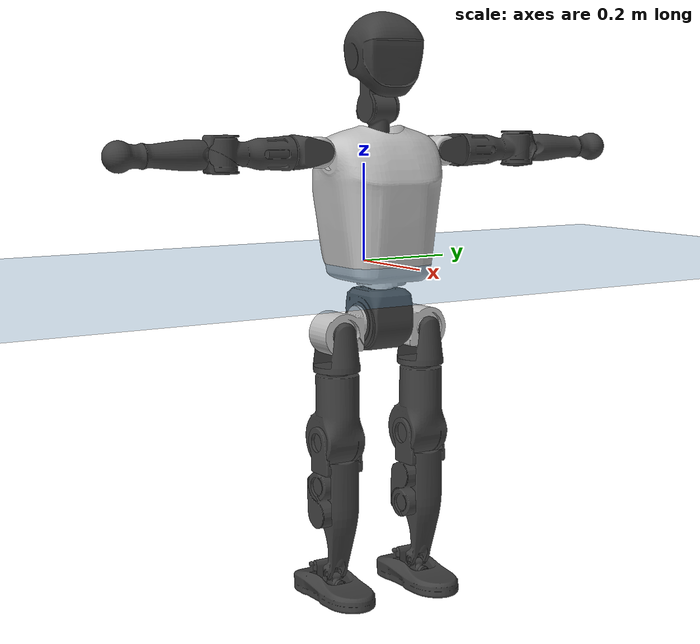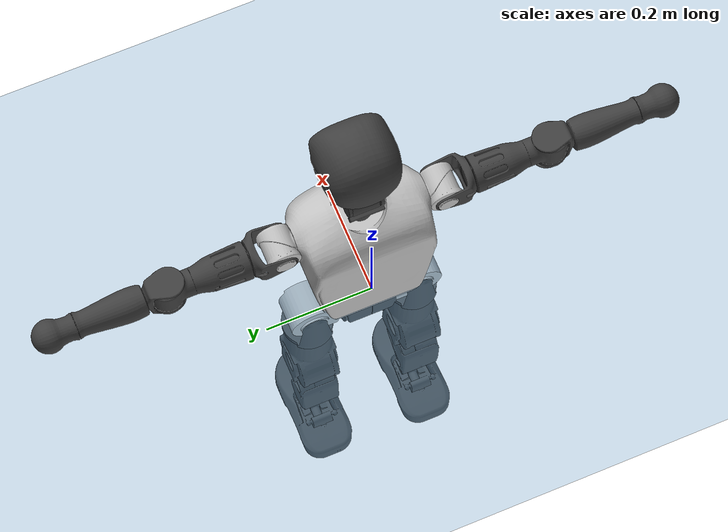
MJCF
<mujoco model="T1">
  <compiler angle="radian" assetdir="assets" balanceinertia="true" inertiafromgeom="false"/>

  <option timestep="0.005" density="1.2" viscosity="2e-05"/>

  <size nkey="1"/>

  <visual>
    <quality shadowsize="8192"/>
    <map shadowclip="0.5"/>
  </visual>

  <default>
    <default class="/">
      <joint armature="0.01" damping="0.01" frictionloss="0.1"/>
      <geom contype="0" conaffinity="0" group="1" solref="-1000 -80"/>
      <site size="0.01 0.005 0.005" group="5"/>
      <general forcelimited="true" biastype="affine" gainprm="25" biasprm="0 -25 -0.6"/>
      <default class="t1">
        <geom rgba="0.25 0.25 0.25 1"/>
        <default class="visual">
          <geom type="mesh" group="2"/>
        </default>
        <default class="collision">
          <geom group="3"/>
        </default>
        <default class="foot">
          <geom size="0.1115 0.05 0.015" type="box" condim="6" group="4" priority="1" solimp="0.015 1 0.015"/>
        </default>
        <default class="reward_collision_sphere">
          <geom group="5" rgba="1 0 0 1"/>
        </default>
      </default>
    </default>
  </default>

  <asset>
    <texture type="skybox" colorspace="auto" name="//unnamed_texture_0" builtin="gradient" rgb1="0.95 0.95 0.95" rgb2="0.95 0.95 0.95" width="100" height="600"/>
    <texture type="2d" colorspace="auto" name="texplane" builtin="checker" rgb1="0.345 0.575 0.748" rgb2="0.345 0.575 0.748" markrgb="1 1 1" width="512" height="512"/>
    <material name="MatPlane" class="/" texture="texplane" texuniform="true" texrepeat="2 2" specular="0.9"/>
    <mesh name="Trunk" class="/" file="Trunk.stl"/>
    <mesh name="H1" class="/" file="H1.stl"/>
    <mesh name="H2" class="/" file="H2.stl"/>
    <mesh name="AL1" class="/" file="AL1.stl"/>
    <mesh name="AL2" class="/" file="AL2.stl"/>
    <mesh name="AL3" class="/" file="AL3.stl"/>
    <mesh name="left_hand_link" class="/" file="left_hand_link.stl"/>
    <mesh name="AR1" class="/" file="AR1.stl"/>
    <mesh name="AR2" class="/" file="AR2.stl"/>
    <mesh name="AR3" class="/" file="AR3.stl"/>
    <mesh name="right_hand_link" class="/" file="right_hand_link.stl"/>
    <mesh name="Waist" class="/" file="Waist.stl"/>
    <mesh name="Hip_Pitch_Left" class="/" file="Hip_Pitch_Left.stl"/>
    <mesh name="Hip_Roll_Left" class="/" file="Hip_Roll_Left.stl"/>
    <mesh name="Hip_Yaw_Left" class="/" file="Hip_Yaw_Left.stl"/>
    <mesh name="Shank_Left" class="/" file="Shank_Left.stl"/>
    <mesh name="Ankle_Cross_Left" class="/" file="Ankle_Cross_Left.stl"/>
    <mesh name="left_foot_link" class="/" file="left_foot_link.stl"/>
    <mesh name="Hip_Pitch_Right" class="/" file="Hip_Pitch_Right.stl"/>
    <mesh name="Hip_Roll_Right" class="/" file="Hip_Roll_Right.stl"/>
    <mesh name="Hip_Yaw_Right" class="/" file="Hip_Yaw_Right.stl"/>
    <mesh name="Shank_Right" class="/" file="Shank_Right.stl"/>
    <mesh name="Ankle_Cross_Right" class="/" file="Ankle_Cross_Right.stl"/>
    <mesh name="right_foot_link" class="/" file="right_foot_link.stl"/>
  </asset>

  <worldbody>
    <geom name="floor" class="/" size="100 100 0.125" type="plane" group="0" material="MatPlane"/>
    <light name="toplight_shadow" class="/" pos="0 0 5" dir="0.0990148 0.0990148 -0.990148" type="directional" ambient="0.04 0.04 0.04" diffuse="0.55 0.55 0.55" specular="0.12 0.12 0.12"/>
    <light name="toplight_fill" class="/" pos="0 0 5" dir="0.0990148 0.0990148 -0.990148" type="directional" castshadow="false" ambient="0.04 0.04 0.04" diffuse="0.3 0.3 0.3" specular="0.08 0.08 0.08"/>
    <body name="trunk" childclass="t1" pos="-3.45645e-05 0.000944989 -0.000109463" quat="1 0.000194709 5.55928e-05 -9.86256e-06">
      <inertial pos="0.0484057 0.000141649 0.108806" quat="0.999958 -0.000517347 -0.00894313 0.001827" mass="10.4476" diaginertia="0.0507412 0.0639891 0.0676222"/>
      <joint name="//unnamed_joint_0" type="free" armature="0" damping="0" frictionloss="0"/>
      <geom name="//unnamed_geom_1" class="visual" rgba="0.76 0.76 0.76 1" mesh="Trunk"/>
      <geom name="//unnamed_geom_2" class="collision" size="0.072064 0.0960853 0.144128" pos="0.0530183 0 0.124395" type="box"/>
      <geom name="//unnamed_geom_3" class="reward_collision_sphere" size="0.110498" pos="0.0530183 0 0.103663"/>
      <geom name="//unnamed_geom_4" class="reward_collision_sphere" size="0.0144128" pos="0.0530183 0.0817951 0"/>
      <geom name="//unnamed_geom_5" class="reward_collision_sphere" size="0.0144128" pos="0.0530183 -0.0817951 0"/>
      <geom name="//unnamed_geom_6" class="reward_collision_sphere" size="0.0144128" pos="0.0530183 0.102966 0.186593"/>
      <geom name="//unnamed_geom_7" class="reward_collision_sphere" size="0.0144128" pos="0.0530183 -0.102966 0.186593"/>
      <site name="imu" pos="-0.00262959 -0.00019378 0.00288391" size="0.00960853"/>
      <camera name="track" pos="0 -1.92459 0" quat="0.707107 0.707107 0 0" mode="trackcom"/>
      <camera name="ego_camera" pos="0.107804 0 0.435383" quat="-0.5 -0.5 0.5 0.5"/>
      <body name="H1" pos="0.0545845 -0.000286207 0.25081" quat="1 -3.52685e-05 1.56987e-05 6.34031e-05">
        <inertial pos="-0.0012954 -0.00161039 0.0595222" quat="0.763909 -0.0132949 0.00188407 0.645184" mass="0.396899" diaginertia="0.000132087 0.000184858 0.000179747"/>
        <joint name="AAHead_yaw" pos="0 0 0" axis="-0.00226223 -0.00154693 0.999996" range="-1.58121 1.56499" armature="0.0099698" damping="0.0113138" frictionloss="0.0986069"/>
        <geom name="//unnamed_geom_8" class="visual" mesh="H1"/>
        <body name="H2" pos="0.000623277 -0.00179203 0.0640308" quat="1 0.000137057 -0.000103483 -0.000281801">
          <inertial pos="0.00602255 0.000505479 0.101006" quat="0.988477 0.106089 -0.0743363 -0.0783135" mass="0.552441" diaginertia="0.00109898 0.00155965 0.00206363"/>
          <joint name="Head_pitch" pos="0 0 0" axis="0.00159475 -0.999999 0.000253597" range="-1.21944 0.346222" armature="0.00917711" damping="0.00340568" frictionloss="0.0982269"/>
          <geom name="//unnamed_geom_9" class="visual" mesh="H2"/>
          <geom name="//unnamed_geom_10" class="collision" size="0.0768682" pos="0.00883638 0 0.114029"/>
          <geom name="//unnamed_geom_11" class="reward_collision_sphere" size="0.0864768" pos="0.0176728 0 0.103663"/>
        </body>
      </body>
      <body name="AL1" pos="0.0520858 0.102585 0.226456" quat="1 -0.00043814 0.00084571 3.69116e-05">
        <inertial pos="8.92987e-05 0.0430673 0.000151779" quat="0.504673 0.495549 -0.503952 0.49575" mass="0.475356" diaginertia="0.000745618 0.00106603 0.00035379"/>
        <joint name="Left_Shoulder_Pitch" pos="0 0 0" axis="4.30924e-05 1 0.000116824" range="-3.28986 1.24084" armature="0.00961378" damping="0.00168771" frictionloss="0.0915159"/>
        <geom name="//unnamed_geom_12" class="visual" rgba="0.76 0.76 0.76 1" mesh="AL1"/>
        <body name="AL2" pos="0.000648277 0.0451407 -0.000175141" quat="1 -9.84651e-05 -1.69399e-05 -5.02059e-05">
          <inertial pos="0.00398586 0.0370209 0.000641411" quat="0.488103 0.511171 -0.486411 0.513677" mass="0.140171" diaginertia="0.000212938 0.000283339 0.000211626"/>
          <joint name="Left_Shoulder_Roll" pos="0 0 0" axis="-0.999999 0.000193881 0.00113665" range="-1.59063 1.73402" armature="0.0100531" damping="0.00510308" frictionloss="0.0965951"/>
          <geom name="//unnamed_geom_13" class="visual" mesh="AL2"/>
          <body name="AL3" pos="0.000306607 0.0587603 -0.00025704" quat="1 1.09256e-05 -2.68998e-05 4.01455e-05">
            <inertial pos="-3.07946e-06 0.0813029 -0.000644237" quat="0.708936 0.705267 -0.00291573 0.000512838" mass="0.899981" diaginertia="0.00696198 0.0105628 0.000748814"/>
            <joint name="Left_Elbow_Pitch" pos="0 0 0" axis="-0.00447964 -0.999989 -0.0012078" stiffness="0.00349331" range="-2.29515 2.28475" armature="0.010351" damping="0.00762512" frictionloss="0.0975882"/>
            <geom name="//unnamed_geom_14" class="visual" mesh="AL3"/>
            <geom name="//unnamed_geom_15" class="collision" size="0.0288256 0.072064" pos="0 0.0481148 0" quat="0.707105 0.707108 0 0" type="cylinder"/>
            <geom name="//unnamed_geom_16" class="reward_collision_sphere" size="0.0345907"/>
            <body name="left_hand_link" pos="0.000253935 0.142464 0.00143808" quat="1 0.000222305 -0.000309602 -0.000249738">
              <inertial pos="-0.0010344 0.10468 0.000435466" quat="0.707383 0.70683 -4.62467e-05 0.000451585" mass="0.289737" diaginertia="0.00437262 0.00664364 0.000258802"/>
              <joint name="Left_Elbow_Yaw" pos="0 0 0" axis="-0.00514699 0.00191035 0.999985" range="-2.43987 -0.0217467" armature="0.00937711" damping="0.00817873" frictionloss="0.095569"/>
              <geom name="//unnamed_geom_17" class="visual" mesh="left_hand_link"/>
              <geom name="//unnamed_geom_18" class="collision" size="0.0288256 0.0840746" pos="0 0.125098 0" quat="0.707105 0.707108 0 0" type="cylinder"/>
              <geom name="//unnamed_geom_19" class="reward_collision_sphere" size="0.0480427"/>
              <geom name="//unnamed_geom_20" class="reward_collision_sphere" size="0.0336299" pos="0 0.105853 0"/>
              <geom name="//unnamed_geom_21" class="reward_collision_sphere" size="0.0336299" pos="0 0.206894 0"/>
            </body>
          </body>
        </body>
      </body>
      <body name="AR1" pos="0.0496983 -0.101695 0.227252" quat="1 -0.000154387 0.000218383 -0.000179991">
        <inertial pos="-0.000269248 -0.0450736 -0.000405209" quat="0.501997 0.4991 -0.502838 0.496036" mass="0.467642" diaginertia="0.000743504 0.00106813 0.000346473"/>
        <joint name="Right_Shoulder_Pitch" pos="0 0 0" axis="0.00120185 -0.999992 -0.00384699" range="-1.22362 3.32844" armature="0.00970841" damping="0.00958177" frictionloss="0.100458"/>
        <geom name="//unnamed_geom_22" class="visual" rgba="0.76 0.76 0.76 1" mesh="AR1"/>
        <body name="AR2" pos="0.000491567 -0.0449726 0.000855762" quat="1 6.41354e-05 0.000297065 -0.000322955">
          <inertial pos="0.00413167 -0.036667 0.000341581" quat="0.512645 0.487444 -0.508628 0.490806" mass="0.140993" diaginertia="0.000216234 0.000287354 0.000210852"/>
          <joint name="Right_Shoulder_Roll" pos="0 0 0" axis="-0.999974 -0.00261829 0.00664843" range="-1.75216 1.56051" armature="0.00973626" damping="0.00375488" frictionloss="0.103184"/>
          <geom name="//unnamed_geom_23" class="visual" mesh="AR2"/>
          <body name="AR3" pos="-0.0011615 -0.0590135 -0.0018254" quat="1 -5.97295e-05 6.48431e-05 -4.02238e-05">
            <inertial pos="-0.000553248 -0.0828002 0.000753888" quat="0.708088 0.706123 0.00135296 -5.44095e-05" mass="0.906901" diaginertia="0.00694824 0.0105502 0.000747506"/>
            <joint name="Right_Elbow_Pitch" pos="0 0 0" axis="0.00117507 0.999999 0.000111735" range="-2.27913 2.28612" armature="0.00928061" damping="0.0102579" frictionloss="0.0924404"/>
            <geom name="//unnamed_geom_24" class="visual" mesh="AR3"/>
            <geom name="//unnamed_geom_25" class="collision" size="0.0288256 0.072064" pos="0 -0.0481148 0" quat="0.707105 0.707108 0 0" type="cylinder"/>
            <geom name="//unnamed_geom_26" class="reward_collision_sphere" size="0.0345907"/>
            <body name="right_hand_link" pos="-8.85038e-05 -0.141199 0.000264611" quat="1 0.000105001 1.84137e-05 -9.3553e-05">
              <inertial pos="-0.000335619 -0.10439 0.00179843" quat="0.70619 0.708022 0.000160532 0.000312191" mass="0.291768" diaginertia="0.0044362 0.00677945 0.000260421"/>
              <joint name="Right_Elbow_Yaw" pos="0 0 0" axis="-0.00525449 -0.0029275 0.999982" range="0.00464944 2.42212" armature="0.00978105" damping="0.000975999" frictionloss="0.0939286"/>
              <geom name="//unnamed_geom_27" class="visual" mesh="right_hand_link"/>
              <geom name="//unnamed_geom_28" class="collision" size="0.0288256 0.0840746" pos="0 -0.125098 0" quat="0.707105 0.707108 0 0" type="cylinder"/>
              <geom name="//unnamed_geom_29" class="reward_collision_sphere" size="0.0480427"/>
              <geom name="//unnamed_geom_30" class="reward_collision_sphere" size="0.0336299" pos="0 -0.105853 0"/>
              <geom name="//unnamed_geom_31" class="reward_collision_sphere" size="0.0336299" pos="0 -0.206894 0"/>
            </body>
          </body>
        </body>
      </body>
      <body name="Waist" pos="0.0560434 -0.00117582 -0.118333" quat="1 -1.6903e-05 0.000325198 -0.000124606">
        <inertial pos="0.00151704 -0.000640624 0.00816873" quat="0.983359 0.000399081 -0.181661 0.00180945" mass="2.25005" diaginertia="0.00285777 0.00429521 0.00556624"/>
        <joint name="Waist" pos="0 0 0" axis="0.000747985 0.00311508 0.999995" stiffness="0.00114437" range="-1.56093 1.5617" armature="0.00947118" damping="0.00902065" frictionloss="0.0974381"/>
        <geom name="//unnamed_geom_32" class="visual" mesh="Waist"/>
        <body name="Hip_Pitch_Left" pos="0.00172045 0.100792 -0.000209596" quat="1 -0.000492926 -0.000527874 -4.61808e-05">
          <inertial pos="0.000808644 -0.0063854 -0.0186031" quat="0.974924 0.2221 0.0137212 0.00254147" mass="0.894773" diaginertia="0.000975421 0.00121403 0.00148306"/>
          <joint name="Left_Hip_Pitch" pos="0 0 0" axis="0.00965491 0.999953 0.000100853" range="-1.80037 1.59175" armature="0.00920132" damping="0.0074761" frictionloss="0.0974517"/>
          <geom name="//unnamed_geom_33" class="visual" rgba="0.76 0.76 0.76 1" mesh="Hip_Pitch_Left"/>
          <body name="Hip_Roll_Left" pos="0.00107756 0.00148658 -0.021133" quat="1 -0.000183316 -0.000222805 0.000848708">
            <inertial pos="0.00126589 -1.41694e-05 -0.0552825" quat="0.706534 -0.00614922 -0.00466484 0.707637" mass="0.334713" diaginertia="0.00093147 0.00122857 0.000606538"/>
            <joint name="Left_Hip_Roll" pos="0 0 0" axis="-0.999994 -0.00112193 0.00329999" range="-1.58513 0.204524" armature="0.0100732" damping="0.0071125" frictionloss="0.0938577"/>
            <geom name="//unnamed_geom_34" class="visual" mesh="Hip_Roll_Left"/>
            <geom name="//unnamed_geom_35" class="reward_collision_sphere" size="0.0528469"/>
            <body name="Hip_Yaw_Left" pos="0.000385768 0.000146941 -0.0845826" quat="1 2.39899e-05 0.000186252 0.000193335">
              <inertial pos="-0.00631128 -0.000161912 -0.0926111" quat="0.695989 -0.0365981 -0.0278019 0.71658" mass="1.92681" diaginertia="0.0137453 0.0205942 0.00308219"/>
              <joint name="Left_Hip_Yaw" pos="0 0 0" axis="0.000151697 0.00012341 -1" range="-0.998235 1.00841" armature="0.00962188" damping="0.00467913" frictionloss="0.0965406"/>
              <geom name="//unnamed_geom_36" class="visual" mesh="Hip_Yaw_Left"/>
              <geom name="//unnamed_geom_37" class="collision" size="0.0480427 0.0768682" type="cylinder"/>
              <body name="Shank_Left" pos="-0.0107171 -0.000109747 -0.138905" quat="1 0.000152184 4.19971e-05 -8.08729e-05">
                <inertial pos="-0.0046925 0.000665024 -0.128995" quat="0.997573 0.00144301 -0.0239399 0.0653727" mass="1.5006" diaginertia="0.0184815 0.0282568 0.00218173"/>
                <joint name="Left_Knee_Pitch" pos="0 0 0" axis="-0.00332129 0.999994 8.12885e-05" range="-0.00875017 2.35972" armature="0.00985125" damping="0.0105773" frictionloss="0.0951988"/>
                <geom name="//unnamed_geom_38" class="visual" mesh="Shank_Left"/>
                <geom name="//unnamed_geom_39" class="collision" size="0.0480427 0.072064" pos="0 0 -0.124395" type="cylinder"/>
                <geom name="//unnamed_geom_40" class="reward_collision_sphere" size="0.0624554"/>
                <body name="Ankle_Cross_Left" pos="-0.000795975 -0.000347547 -0.290333" quat="1 2.9984e-05 0.000343288 8.40601e-05">
                  <inertial pos="-0.0022057 -0.00116977 -0.00867268" quat="0.44356 0.551097 0.549743 0.444218" mass="0.06511" diaginertia="1.56839e-05 2.13161e-05 1.35317e-05"/>
                  <joint name="Left_Ankle_Pitch" pos="0 0 0" axis="-0.000114656 0.999999 0.00155717" stiffness="0.00215245" range="-0.861248 0.344322" armature="0.00999431" damping="0.0102148" frictionloss="0.0964432"/>
                  <geom name="//unnamed_geom_41" class="visual" mesh="Ankle_Cross_Left"/>
                  <body name="left_foot_link" pos="-0.000345626 -0.000872338 -0.0124136" quat="1 -1.43781e-05 -6.6828e-05 1.16973e-05">
                    <inertial pos="0.000244287 8.25719e-05 -0.00804052" quat="0.000454176 0.620877 -0.000693812 0.783907" mass="0.606705" diaginertia="0.00144272 0.00197525 0.0026322"/>
                    <joint name="Left_Ankle_Roll" pos="0 0 0" axis="-0.999994 -0.00245244 0.00255091" range="-0.44311 0.437682" armature="0.00938374" damping="0.0148151" frictionloss="0.0959057"/>
                    <geom name="//unnamed_geom_42" class="visual" mesh="left_foot_link"/>
                    <geom name="left_foot" class="foot" size="0.1108 0.0483746 0.0145661" pos="0.00883638 0 -0.0155494"/>
                    <geom name="//unnamed_geom_44" class="reward_collision_sphere" size="0.0499644" pos="0.00883638 0 -0.0155494"/>
                    <geom name="//unnamed_geom_45" class="reward_collision_sphere" size="0.0288256" pos="0.0839456 -0.0221328 -0.0155494"/>
                    <geom name="//unnamed_geom_46" class="reward_collision_sphere" size="0.0288256" pos="-0.0618547 -0.0221328 -0.0155494"/>
                    <site name="left_foot" class="foot" pos="0.00883638 0 -0.0155494" size="0.00960853"/>
                  </body>
                </body>
              </body>
            </body>
          </body>
        </body>
        <body name="Hip_Pitch_Right" pos="-0.000643584 -0.102811 0.000565853" quat="0.999999 -0.00014671 -0.000372799 0.000917668">
          <inertial pos="-8.26298e-05 0.00561086 -0.0185039" quat="0.973981 -0.226316 0.0109117 -0.00471665" mass="0.887213" diaginertia="0.000962344 0.0011913 0.00148762"/>
          <joint name="Right_Hip_Pitch" pos="0 0 0" axis="-0.00117281 -0.999999 -0.000741242" range="-1.56047 1.79968" armature="0.0100538" damping="0.00775396" frictionloss="0.101309"/>
          <geom name="//unnamed_geom_47" class="visual" rgba="0.76 0.76 0.76 1" mesh="Hip_Pitch_Right"/>
          <body name="Hip_Roll_Right" pos="-0.000289144 0.00144472 -0.0194041" quat="1 -2.48206e-06 -6.06115e-06 -1.46273e-06">
            <inertial pos="0.000417936 0.00109389 -0.0566714" quat="0.706326 -0.00563283 -0.00183274 0.707862" mass="0.335669" diaginertia="0.000922618 0.00124476 0.000613519"/>
            <joint name="Right_Hip_Roll" pos="0 0 0" axis="-0.999997 0.00124084 -0.00222178" range="-0.199588 1.57139" armature="0.00918151" damping="0.01014" frictionloss="0.0979269"/>
            <geom name="//unnamed_geom_48" class="visual" mesh="Hip_Roll_Right"/>
            <geom name="//unnamed_geom_49" class="reward_collision_sphere" size="0.0528469"/>
            <body name="Hip_Yaw_Right" pos="-7.68556e-05 0.000697268 -0.0845336" quat="1 7.89035e-05 -0.000229804 2.02232e-05">
              <inertial pos="-0.00685149 0.000306049 -0.0924332" quat="0.714648 -0.0314857 -0.0337466 0.69796" mass="1.88858" diaginertia="0.0138299 0.0207343 0.00312483"/>
              <joint name="Right_Hip_Yaw" pos="0 0 0" axis="0.000479342 -0.000882296 -0.999999" range="-1.01101 1.00236" armature="0.00886947" damping="0.00869658" frictionloss="0.0999323"/>
              <geom name="//unnamed_geom_50" class="visual" mesh="Hip_Yaw_Right"/>
              <geom name="//unnamed_geom_51" class="collision" size="0.0480427 0.0768682" type="cylinder"/>
              <body name="Shank_Right" pos="-0.013768 0.000223538 -0.138831" quat="1 -7.0925e-05 0.000343979 -0.000181874">
                <inertial pos="-0.00543345 -0.000539708 -0.126116" quat="0.999344 -0.00125625 -0.0224603 -0.0283993" mass="1.58947" diaginertia="0.0191437 0.0288429 0.00239618"/>
                <joint name="Right_Knee_Pitch" pos="0 0 0" axis="0.00562242 -0.999961 0.00678264" range="-2.33994 -0.00525451" armature="0.00938069" damping="0.00606594" frictionloss="0.0990966"/>
                <geom name="//unnamed_geom_52" class="visual" mesh="Shank_Right"/>
                <geom name="//unnamed_geom_53" class="collision" size="0.0480427 0.072064" pos="0 0 -0.124395" type="cylinder"/>
                <geom name="//unnamed_geom_54" class="reward_collision_sphere" size="0.0624554"/>
                <body name="Ankle_Cross_Right" pos="-0.000902216 -0.00101619 -0.29012" quat="1 0.000186586 0.00011375 0.000711004">
                  <inertial pos="-0.00266867 0.000635605 -0.00854468" quat="0.446347 0.547788 0.550741 0.444282" mass="0.064548" diaginertia="1.56388e-05 2.11839e-05 1.35641e-05"/>
                  <joint name="Right_Ankle_Pitch" pos="0 0 0" axis="0.00143334 -0.999999 9.76654e-05" range="-0.35395 0.866558" armature="0.00953771" damping="0.00817688" frictionloss="0.0937608"/>
                  <geom name="//unnamed_geom_55" class="visual" mesh="Ankle_Cross_Right"/>
                  <body name="right_foot_link" pos="-0.000563704 -0.00172286 -0.0115002" quat="1 7.17692e-05 -8.14049e-05 -7.75962e-06">
                    <inertial pos="-9.03011e-05 -0.000374601 -0.00950083" quat="1.06702e-05 0.620318 0.000661626 0.78435" mass="0.610551" diaginertia="0.00145384 0.00197057 0.00263801"/>
                    <joint name="Right_Ankle_Roll" pos="0 0 0" axis="-0.999993 0.00356757 0.000654857" range="-0.407821 0.435394" armature="0.00973329" damping="0.00958817" frictionloss="0.0986865"/>
                    <geom name="//unnamed_geom_56" class="visual" mesh="right_foot_link"/>
                    <geom name="right_foot" class="foot" size="0.099698 0.0488086 0.0146954" pos="0.00883638 0 -0.0155494"/>
                    <geom name="//unnamed_geom_58" class="reward_collision_sphere" size="0.0384341"/>
                    <geom name="//unnamed_geom_59" class="reward_collision_sphere" size="0.0288256" pos="0.00883638 0 -0.0155494"/>
                    <geom name="//unnamed_geom_60" class="reward_collision_sphere" size="0.0288256" pos="0.0839456 0.0221328 -0.0155494"/>
                    <geom name="//unnamed_geom_61" class="reward_collision_sphere" size="0.0288256" pos="-0.0618547 0.0221328 -0.0155494"/>
                    <site name="right_foot" class="foot" pos="0.00883638 0 -0.0155494" size="0.00960853"/>
                  </body>
                </body>
              </body>
            </body>
          </body>
        </body>
      </body>
    </body>
  </worldbody>

  <contact>
    <pair class="/" geom1="floor" geom2="left_foot" name="//unnamed_contact_0"/>
    <pair class="/" geom1="floor" geom2="right_foot" name="//unnamed_contact_1"/>
  </contact>

  <actuator>
    <general name="AAHead_yaw" class="/" joint="AAHead_yaw" forcerange="-6.95624 6.95624" gainprm="23.7442" biasprm="0 -23.7442 -0.566653"/>
    <general name="Head_pitch" class="/" joint="Head_pitch" forcerange="-6.56982 6.56982" gainprm="23.7442" biasprm="0 -23.7442 -0.566653"/>
    <general name="Left_Shoulder_Pitch" class="/" joint="Left_Shoulder_Pitch" forcerange="-16.8346 16.8346" gainprm="23.7442" biasprm="0 -23.7442 -0.566653"/>
    <general name="Left_Shoulder_Roll" class="/" joint="Left_Shoulder_Roll" forcerange="-17.2982 17.2982" gainprm="23.7442" biasprm="0 -23.7442 -0.566653"/>
    <general name="Left_Elbow_Pitch" class="/" joint="Left_Elbow_Pitch" forcerange="-17.2857 17.2857" gainprm="23.7442" biasprm="0 -23.7442 -0.566653"/>
    <general name="Left_Elbow_Yaw" class="/" joint="Left_Elbow_Yaw" forcerange="-17.182 17.182" gainprm="23.7442" biasprm="0 -23.7442 -0.566653"/>
    <general name="Right_Shoulder_Pitch" class="/" joint="Right_Shoulder_Pitch" forcerange="-17.3761 17.3761" gainprm="23.7442" biasprm="0 -23.7442 -0.566653"/>
    <general name="Right_Shoulder_Roll" class="/" joint="Right_Shoulder_Roll" forcerange="-17.5522 17.5522" gainprm="23.7442" biasprm="0 -23.7442 -0.566653"/>
    <general name="Right_Elbow_Pitch" class="/" joint="Right_Elbow_Pitch" forcerange="-17.4482 17.4482" gainprm="23.7442" biasprm="0 -23.7442 -0.566653"/>
    <general name="Right_Elbow_Yaw" class="/" joint="Right_Elbow_Yaw" forcerange="-17.1005 17.1005" gainprm="23.7442" biasprm="0 -23.7442 -0.566653"/>
    <general name="Waist" class="/" joint="Waist" forcerange="-28.7603 28.7603" gainprm="23.7442" biasprm="0 -23.7442 -0.566653"/>
    <general name="Left_Hip_Pitch" class="/" joint="Left_Hip_Pitch" forcerange="-43.6628 43.6628" gainprm="23.7442" biasprm="0 -23.7442 -0.566653"/>
    <general name="Left_Hip_Roll" class="/" joint="Left_Hip_Roll" forcerange="-29.066 29.066" gainprm="23.7442" biasprm="0 -23.7442 -0.566653"/>
    <general name="Left_Hip_Yaw" class="/" joint="Left_Hip_Yaw" forcerange="-28.401 28.401" gainprm="23.7442" biasprm="0 -23.7442 -0.566653"/>
    <general name="Left_Knee_Pitch" class="/" joint="Left_Knee_Pitch" forcerange="-57.0233 57.0233" gainprm="23.7442" biasprm="0 -23.7442 -0.566653"/>
    <general name="Left_Ankle_Pitch" class="/" joint="Left_Ankle_Pitch" forcerange="-20.1353 20.1353" gainprm="23.7442" biasprm="0 -23.7442 -0.566653"/>
    <general name="Left_Ankle_Roll" class="/" joint="Left_Ankle_Roll" forcerange="-13.5794 13.5794" gainprm="23.7442" biasprm="0 -23.7442 -0.566653"/>
    <general name="Right_Hip_Pitch" class="/" joint="Right_Hip_Pitch" forcerange="-42.9454 42.9454" gainprm="23.7442" biasprm="0 -23.7442 -0.566653"/>
    <general name="Right_Hip_Roll" class="/" joint="Right_Hip_Roll" forcerange="-28.8193 28.8193" gainprm="23.7442" biasprm="0 -23.7442 -0.566653"/>
    <general name="Right_Hip_Yaw" class="/" joint="Right_Hip_Yaw" forcerange="-29.8255 29.8255" gainprm="23.7442" biasprm="0 -23.7442 -0.566653"/>
    <general name="Right_Knee_Pitch" class="/" joint="Right_Knee_Pitch" forcerange="-57.4131 57.4131" gainprm="23.7442" biasprm="0 -23.7442 -0.566653"/>
    <general name="Right_Ankle_Pitch" class="/" joint="Right_Ankle_Pitch" forcerange="-19.2755 19.2755" gainprm="23.7442" biasprm="0 -23.7442 -0.566653"/>
    <general name="Right_Ankle_Roll" class="/" joint="Right_Ankle_Roll" forcerange="-14.3086 14.3086" gainprm="23.7442" biasprm="0 -23.7442 -0.566653"/>
  </actuator>

  <sensor>
    <gyro site="imu" name="imu_angular_velocity"/>
    <velocimeter site="imu" name="imu_linear_velocity"/>
    <framelinvel objtype="site" objname="left_foot" name="left_foot_global_linear_velocity"/>
    <framelinvel objtype="site" objname="right_foot" name="right_foot_global_linear_velocity"/>
  </sensor>

  <keyframe>
    <key name="home" qpos="0 0 0.6385 1 0 0 0 0 0 0 1.4 0 -0.4 0 -1.4 0 0.4 0 -0.4 0 0 0.8 -0.4 0 0.4 0 0 -0.8 0.4 0"/>
  </keyframe>
</mujoco>
